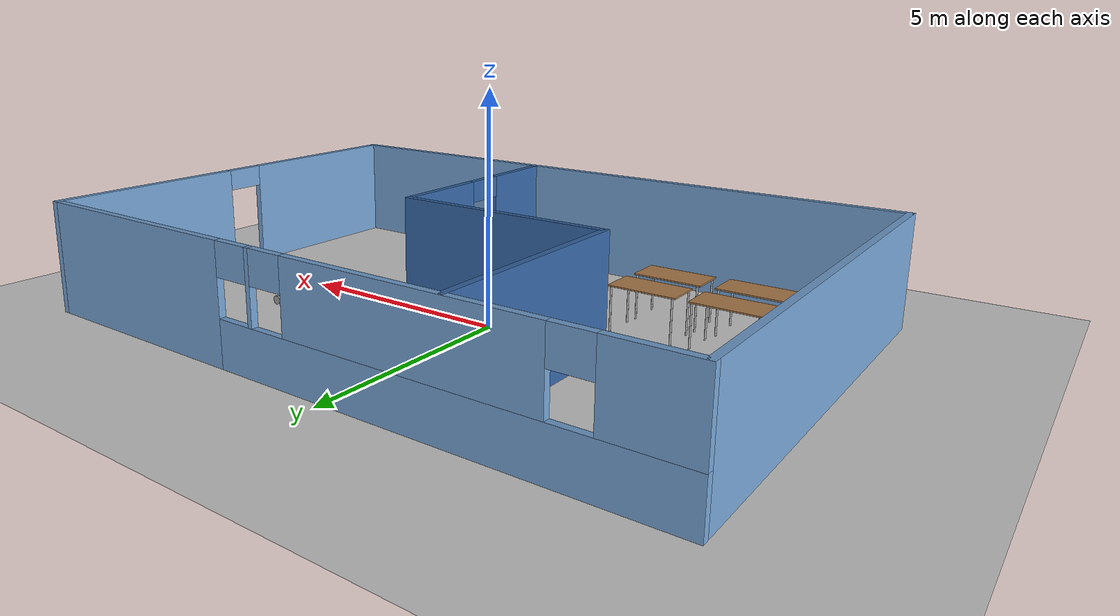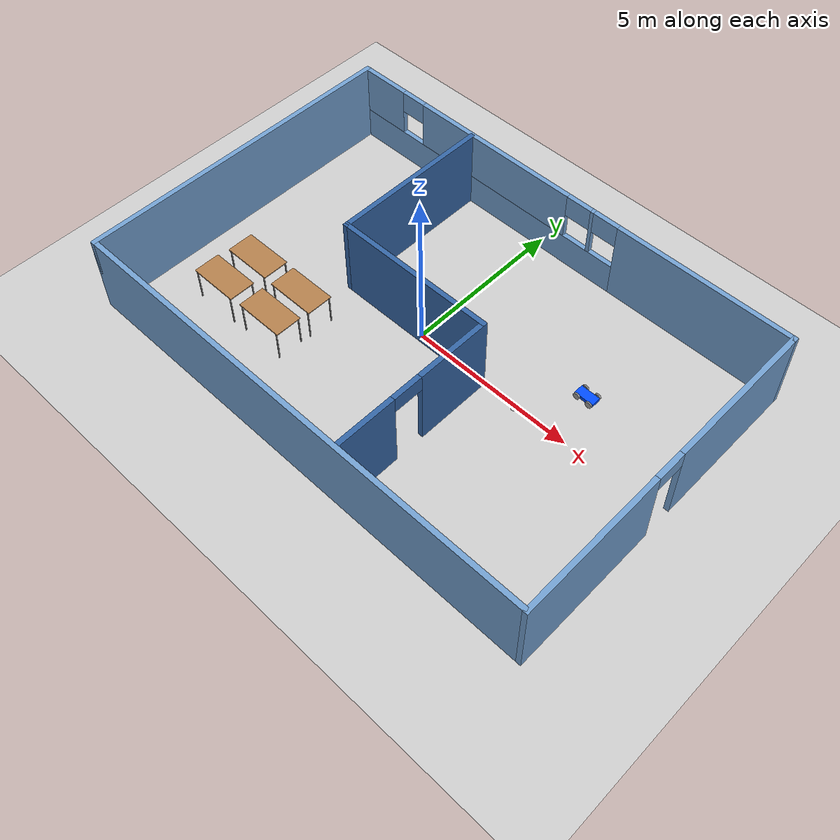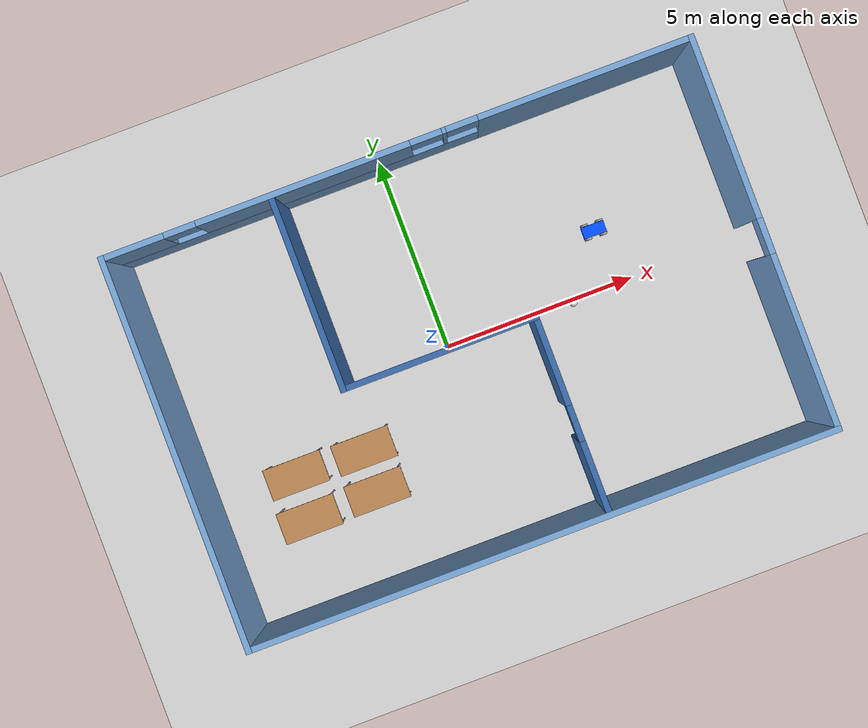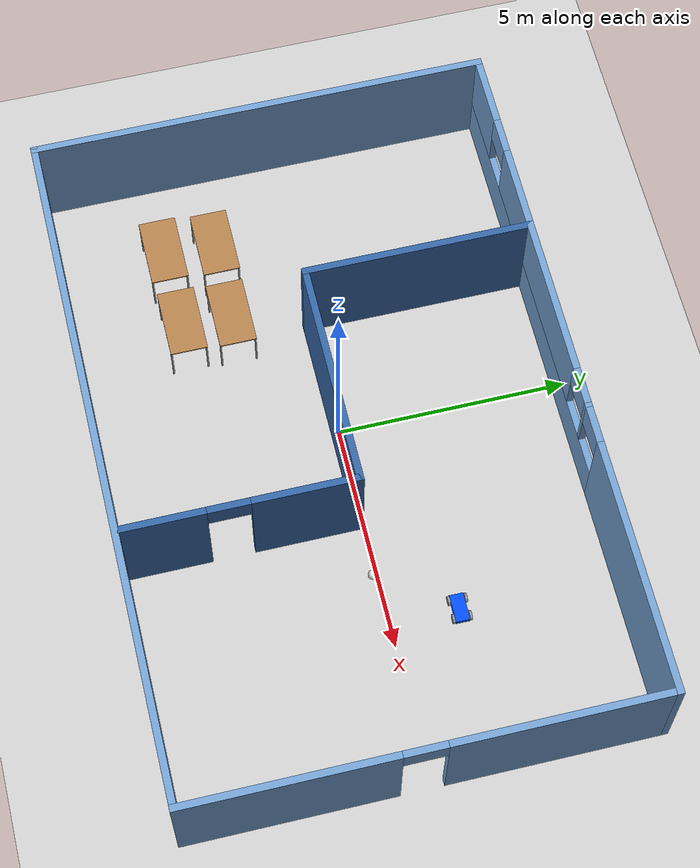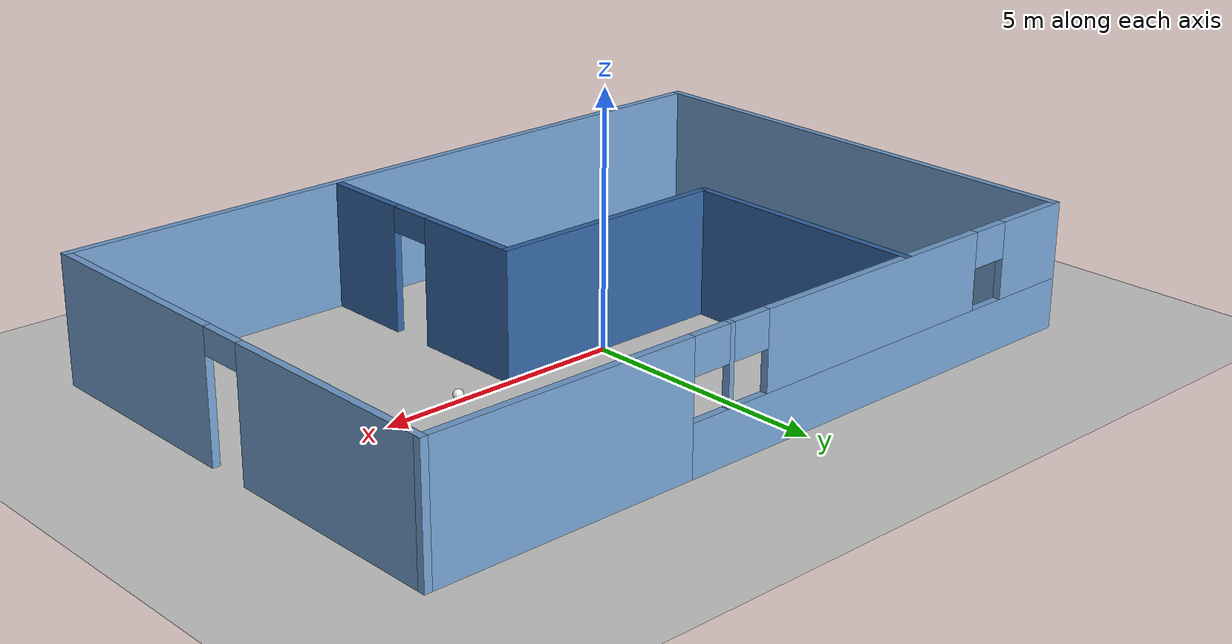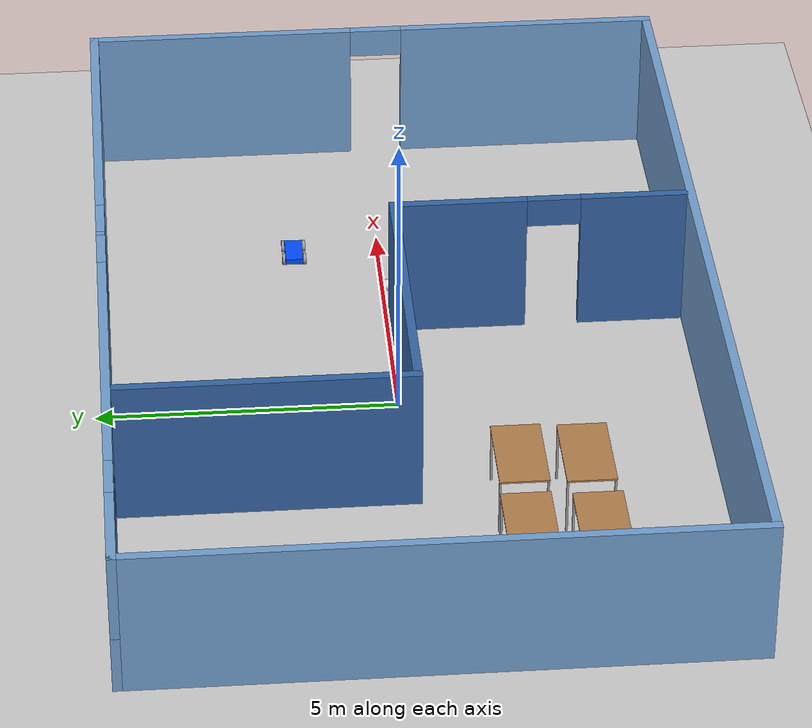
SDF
<sdf version="1.6">
 <world name="default">
  <plugin name="UdacityScript" filename="libUdacityScript.so"/>
  <light name="sun" type="directional">
   <pose>0 0 10 0 -0 0</pose>
   <diffuse>0.8 0.8 0.8 1</diffuse>
   <specular>0.2 0.2 0.2 1</specular>
   <attenuation>
    <range>1000</range>
    <constant>0.9</constant>
    <linear>0.01</linear>
    <quadratic>0.001</quadratic>
   </attenuation>
   <direction>-0.5 0.1 -0.9</direction>
  </light>
  <model name="ground_plane">
   <static>1</static>
   <link name="link">
    <collision name="collision">
     <geometry><plane><normal>0 0 1</normal><size>100 100</size></plane></geometry>
     <surface>
      <contact><collide_bitmask>65535</collide_bitmask></contact>
      <friction><ode><mu>100</mu><mu2>50</mu2></ode></friction>
     </surface>
    </collision>
    <visual name="visual">
     <cast_shadows>0</cast_shadows>
     <geometry><plane><normal>0 0 1</normal><size>100 100</size></plane></geometry>
     <material>
      <script><uri>file://media/materials/scripts/gazebo.material</uri><name>Gazebo/Grey</name></script>
     </material>
    </visual>
   </link>
  </model>
  <gravity>0 0 -9.8</gravity>
  <magnetic_field>6e-06 2.3e-05 -4.2e-05</magnetic_field>
  <atmosphere type="adiabatic"/>
  <physics name="default_physics" default="0" type="ode">
   <max_step_size>0.001</max_step_size>
   <real_time_factor>1</real_time_factor>
   <real_time_update_rate>1000</real_time_update_rate>
  </physics>
  <scene><ambient>0.4 0.4 0.4 1</ambient><background>0.7 0.7 0.7 1</background><shadows>1</shadows></scene>
  <audio><device>default</device></audio>
  <spherical_coordinates>
   <surface_model>EARTH_WGS84</surface_model>
   <latitude_deg>0</latitude_deg>
   <longitude_deg>0</longitude_deg>
   <elevation>0</elevation>
   <heading_deg>0</heading_deg>
  </spherical_coordinates>
  <model name="world">
   <pose>0.54481 -0.143092 0 0 -0 0</pose>
   <link name="Wall_0">
    <collision name="Wall_0_Collision">
     <geometry><box><size>10 0.15 2.5</size></box></geometry>
     <pose>0 0 1.25 0 -0 0</pose>
    </collision>
    <visual name="Wall_0_Visual">
     <pose>0 0 1.25 0 -0 0</pose>
     <geometry><box><size>10 0.15 2.5</size></box></geometry>
     <material>
      <script><uri>file://media/materials/scripts/gazebo.material</uri><name>Gazebo/Grey</name></script>
      <ambient>0.447059 0.623529 0.811765 1</ambient>
     </material>
     <meta><layer>0</layer></meta>
    </visual>
    <pose>-7.425 0 0 0 -0 -1.5708</pose>
   </link>
   <link name="Wall_1">
    <collision name="Wall_1_Collision">
     <geometry><box><size>15 0.15 2.5</size></box></geometry>
     <pose>0 0 1.25 0 -0 0</pose>
    </collision>
    <visual name="Wall_1_Visual">
     <pose>0 0 1.25 0 -0 0</pose>
     <geometry><box><size>15 0.15 2.5</size></box></geometry>
     <material>
      <script><uri>file://media/materials/scripts/gazebo.material</uri><name>Gazebo/Grey</name></script>
      <ambient>0.447059 0.623529 0.811765 1</ambient>
     </material>
     <meta><layer>0</layer></meta>
    </visual>
    <pose>0 -4.925 0 0 -0 0</pose>
   </link>
   <link name="Wall_2">
    <pose>7.425 0 0 0 -0 1.5708</pose>
    <visual name="Wall_2_Visual_0">
     <pose>-2.76095 0 1.25 0 -0 0</pose>
     <geometry><box><size>4.47811 0.15 2.5</size></box></geometry>
     <material>
      <script><uri>file://media/materials/scripts/gazebo.material</uri><name>Gazebo/Grey</name></script>
      <ambient>0.447059 0.623529 0.811765 1</ambient>
     </material>
     <meta><layer>0</layer></meta>
    </visual>
    <collision name="Wall_2_Collision_0">
     <geometry><box><size>4.47811 0.15 2.5</size></box></geometry>
     <pose>-2.76095 0 1.25 0 -0 0</pose>
    </collision>
    <visual name="Wall_2_Visual_1">
     <pose>2.68905 0 1.25 0 -0 0</pose>
     <geometry><box><size>4.6219 0.15 2.5</size></box></geometry>
     <material>
      <script><uri>file://media/materials/scripts/gazebo.material</uri><name>Gazebo/Grey</name></script>
      <ambient>0.447059 0.623529 0.811765 1</ambient>
     </material>
     <meta><layer>0</layer></meta>
    </visual>
    <collision name="Wall_2_Collision_1">
     <geometry><box><size>4.6219 0.15 2.5</size></box></geometry>
     <pose>2.68905 0 1.25 0 -0 0</pose>
    </collision>
    <visual name="Wall_2_Visual_2">
     <pose>-0.071895 0 2.25 0 -0 0</pose>
     <geometry><box><size>0.9 0.15 0.5</size></box></geometry>
     <material>
      <script><uri>file://media/materials/scripts/gazebo.material</uri><name>Gazebo/Grey</name></script>
      <ambient>0.447059 0.623529 0.811765 1</ambient>
     </material>
     <meta><layer>0</layer></meta>
    </visual>
    <collision name="Wall_2_Collision_2">
     <geometry><box><size>0.9 0.15 0.5</size></box></geometry>
     <pose>-0.071895 0 2.25 0 -0 0</pose>
    </collision>
   </link>
   <link name="Wall_3">
    <pose>0 4.925 0 0 -0 3.14159</pose>
    <visual name="Wall_3_Visual_0">
     <pose>-4.77062 0 1.25 0 -0 0</pose>
     <geometry><box><size>5.45876 0.15 2.5</size></box></geometry>
     <material>
      <script><uri>file://media/materials/scripts/gazebo.material</uri><name>Gazebo/Grey</name></script>
      <ambient>0.447059 0.623529 0.811765 1</ambient>
     </material>
     <meta><layer>0</layer></meta>
    </visual>
    <collision name="Wall_3_Collision_0">
     <geometry><box><size>5.45876 0.15 2.5</size></box></geometry>
     <pose>-4.77062 0 1.25 0 -0 0</pose>
    </collision>
    <visual name="Wall_3_Visual_1">
     <pose>2.72938 0 0.5 0 -0 0</pose>
     <geometry><box><size>9.54124 0.15 1</size></box></geometry>
     <material>
      <script><uri>file://media/materials/scripts/gazebo.material</uri><name>Gazebo/Grey</name></script>
      <ambient>0.447059 0.623529 0.811765 1</ambient>
     </material>
     <meta><layer>0</layer></meta>
    </visual>
    <collision name="Wall_3_Collision_1">
     <geometry><box><size>9.54124 0.15 1</size></box></geometry>
     <pose>2.72938 0 0.5 0 -0 0</pose>
    </collision>
    <visual name="Wall_3_Visual_2">
     <pose>-1.18904 0 1.75 0 -0 0</pose>
     <geometry><box><size>0.104407 0.15 1.5</size></box></geometry>
     <material>
      <script><uri>file://media/materials/scripts/gazebo.material</uri><name>Gazebo/Grey</name></script>
      <ambient>0.447059 0.623529 0.811765 1</ambient>
     </material>
     <meta><layer>0</layer></meta>
    </visual>
    <collision name="Wall_3_Collision_2">
     <geometry><box><size>0.104407 0.15 1.5</size></box></geometry>
     <pose>-1.18904 0 1.75 0 -0 0</pose>
    </collision>
    <visual name="Wall_3_Visual_3">
     <pose>2.36197 0 1.75 0 -0 0</pose>
     <geometry><box><size>5.3976 0.15 1.5</size></box></geometry>
     <material>
      <script><uri>file://media/materials/scripts/gazebo.material</uri><name>Gazebo/Grey</name></script>
      <ambient>0.447059 0.623529 0.811765 1</ambient>
     </material>
     <meta><layer>0</layer></meta>
    </visual>
    <collision name="Wall_3_Collision_3">
     <geometry><box><size>5.3976 0.15 1.5</size></box></geometry>
     <pose>2.36197 0 1.75 0 -0 0</pose>
    </collision>
    <visual name="Wall_3_Visual_4">
     <pose>6.68038 0 1.75 0 -0 0</pose>
     <geometry><box><size>1.63923 0.15 1.5</size></box></geometry>
     <material>
      <script><uri>file://media/materials/scripts/gazebo.material</uri><name>Gazebo/Grey</name></script>
      <ambient>0.447059 0.623529 0.811765 1</ambient>
     </material>
     <meta><layer>0</layer></meta>
    </visual>
    <collision name="Wall_3_Collision_4">
     <geometry><box><size>1.63923 0.15 1.5</size></box></geometry>
     <pose>6.68038 0 1.75 0 -0 0</pose>
    </collision>
    <visual name="Wall_3_Visual_5">
     <pose>-1.64124 0 2.15 0 -0 0</pose>
     <geometry><box><size>0.8 0.15 0.7</size></box></geometry>
     <material>
      <script><uri>file://media/materials/scripts/gazebo.material</uri><name>Gazebo/Grey</name></script>
      <ambient>0.447059 0.623529 0.811765 1</ambient>
     </material>
     <meta><layer>0</layer></meta>
    </visual>
    <collision name="Wall_3_Collision_5">
     <geometry><box><size>0.8 0.15 0.7</size></box></geometry>
     <pose>-1.64124 0 2.15 0 -0 0</pose>
    </collision>
    <visual name="Wall_3_Visual_6">
     <pose>-0.736835 0 2.15 0 -0 0</pose>
     <geometry><box><size>0.8 0.15 0.7</size></box></geometry>
     <material>
      <script><uri>file://media/materials/scripts/gazebo.material</uri><name>Gazebo/Grey</name></script>
      <ambient>0.447059 0.623529 0.811765 1</ambient>
     </material>
     <meta><layer>0</layer></meta>
    </visual>
    <collision name="Wall_3_Collision_6">
     <geometry><box><size>0.8 0.15 0.7</size></box></geometry>
     <pose>-0.736835 0 2.15 0 -0 0</pose>
    </collision>
    <visual name="Wall_3_Visual_7">
     <pose>5.46077 0 2.15 0 -0 0</pose>
     <geometry><box><size>0.8 0.15 0.7</size></box></geometry>
     <material>
      <script><uri>file://media/materials/scripts/gazebo.material</uri><name>Gazebo/Grey</name></script>
      <ambient>0.447059 0.623529 0.811765 1</ambient>
     </material>
     <meta><layer>0</layer></meta>
    </visual>
    <collision name="Wall_3_Collision_7">
     <geometry><box><size>0.8 0.15 0.7</size></box></geometry>
     <pose>5.46077 0 2.15 0 -0 0</pose>
    </collision>
   </link>
   <link name="Wall_5">
    <collision name="Wall_5_Collision">
     <geometry><box><size>5 0.15 2.5</size></box></geometry>
     <pose>0 0 1.25 0 -0 0</pose>
    </collision>
    <visual name="Wall_5_Visual">
     <pose>0 0 1.25 0 -0 0</pose>
     <geometry><box><size>5 0.15 2.5</size></box></geometry>
     <material>
      <script><uri>file://media/materials/scripts/gazebo.material</uri><name>Gazebo/Grey</name></script>
      <ambient>0.203922 0.396078 0.643137 1</ambient>
     </material>
     <meta><layer>0</layer></meta>
    </visual>
    <pose>-3.17339 2.47734 0 0 -0 -1.5708</pose>
   </link>
   <link name="Wall_6">
    <collision name="Wall_6_Collision">
     <geometry><box><size>5 0.15 2.5</size></box></geometry>
     <pose>0 0 1.25 0 -0 0</pose>
    </collision>
    <visual name="Wall_6_Visual">
     <pose>0 0 1.25 0 -0 0</pose>
     <geometry><box><size>5 0.15 2.5</size></box></geometry>
     <material>
      <script><uri>file://media/materials/scripts/gazebo.material</uri><name>Gazebo/Grey</name></script>
      <ambient>0.203922 0.396078 0.643137 1</ambient>
     </material>
     <meta><layer>0</layer></meta>
    </visual>
    <pose>-0.748394 0.052343 0 0 -0 0</pose>
   </link>
   <link name="Wall_7">
    <pose>1.67661 -2.37266 0 0 -0 -1.5708</pose>
    <visual name="Wall_7_Visual_0">
     <pose>-1.34857 0 1.25 0 -0 0</pose>
     <geometry><box><size>2.30286 0.15 2.5</size></box></geometry>
     <material>
      <script><uri>file://media/materials/scripts/gazebo.material</uri><name>Gazebo/Grey</name></script>
      <ambient>0.203922 0.396078 0.643137 1</ambient>
     </material>
     <meta><layer>0</layer></meta>
    </visual>
    <collision name="Wall_7_Collision_0">
     <geometry><box><size>2.30286 0.15 2.5</size></box></geometry>
     <pose>-1.34857 0 1.25 0 -0 0</pose>
    </collision>
    <visual name="Wall_7_Visual_1">
     <pose>1.60143 0 1.25 0 -0 0</pose>
     <geometry><box><size>1.79714 0.15 2.5</size></box></geometry>
     <material>
      <script><uri>file://media/materials/scripts/gazebo.material</uri><name>Gazebo/Grey</name></script>
      <ambient>0.203922 0.396078 0.643137 1</ambient>
     </material>
     <meta><layer>0</layer></meta>
    </visual>
    <collision name="Wall_7_Collision_1">
     <geometry><box><size>1.79714 0.15 2.5</size></box></geometry>
     <pose>1.60143 0 1.25 0 -0 0</pose>
    </collision>
    <visual name="Wall_7_Visual_2">
     <pose>0.252856 0 2.25 0 -0 0</pose>
     <geometry><box><size>0.9 0.15 0.5</size></box></geometry>
     <material>
      <script><uri>file://media/materials/scripts/gazebo.material</uri><name>Gazebo/Grey</name></script>
      <ambient>0.203922 0.396078 0.643137 1</ambient>
     </material>
     <meta><layer>0</layer></meta>
    </visual>
    <collision name="Wall_7_Collision_2">
     <geometry><box><size>0.9 0.15 0.5</size></box></geometry>
     <pose>0.252856 0 2.25 0 -0 0</pose>
    </collision>
   </link>
   <static>1</static>
  </model>
  <model name="table">
   <static>1</static>
   <link name="link">
    <collision name="surface">
     <pose>0 0 1 0 -0 0</pose>
     <geometry><box><size>1.5 0.8 0.03</size></box></geometry>
     <surface><friction><ode><mu>0.6</mu><mu2>0.6</mu2></ode></friction></surface>
    </collision>
    <visual name="visual1">
     <pose>0 0 1 0 -0 0</pose>
     <geometry><box><size>1.5 0.8 0.03</size></box></geometry>
     <material>
      <script><uri>file://media/materials/scripts/gazebo.material</uri><name>Gazebo/Wood</name></script>
     </material>
    </visual>
    <collision name="front_left_leg">
     <pose>0.68 0.38 0.5 0 -0 0</pose>
     <geometry><cylinder><radius>0.02</radius><length>1</length></cylinder></geometry>
    </collision>
    <visual name="front_left_leg">
     <pose>0.68 0.38 0.5 0 -0 0</pose>
     <geometry><cylinder><radius>0.02</radius><length>1</length></cylinder></geometry>
     <material>
      <script><uri>file://media/materials/scripts/gazebo.material</uri><name>Gazebo/Grey</name></script>
     </material>
    </visual>
    <collision name="front_right_leg">
     <pose>0.68 -0.38 0.5 0 -0 0</pose>
     <geometry><cylinder><radius>0.02</radius><length>1</length></cylinder></geometry>
    </collision>
    <visual name="front_right_leg">
     <pose>0.68 -0.38 0.5 0 -0 0</pose>
     <geometry><cylinder><radius>0.02</radius><length>1</length></cylinder></geometry>
     <material>
      <script><uri>file://media/materials/scripts/gazebo.material</uri><name>Gazebo/Grey</name></script>
     </material>
    </visual>
    <collision name="back_right_leg">
     <pose>-0.68 -0.38 0.5 0 -0 0</pose>
     <geometry><cylinder><radius>0.02</radius><length>1</length></cylinder></geometry>
    </collision>
    <visual name="back_right_leg">
     <pose>-0.68 -0.38 0.5 0 -0 0</pose>
     <geometry><cylinder><radius>0.02</radius><length>1</length></cylinder></geometry>
     <material>
      <script><uri>file://media/materials/scripts/gazebo.material</uri><name>Gazebo/Grey</name></script>
     </material>
    </visual>
    <collision name="back_left_leg">
     <pose>-0.68 0.38 0.5 0 -0 0</pose>
     <geometry><cylinder><radius>0.02</radius><length>1</length></cylinder></geometry>
    </collision>
    <visual name="back_left_leg">
     <pose>-0.68 0.38 0.5 0 -0 0</pose>
     <geometry><cylinder><radius>0.02</radius><length>1</length></cylinder></geometry>
     <material>
      <script><uri>file://media/materials/scripts/gazebo.material</uri><name>Gazebo/Grey</name></script>
     </material>
    </visual>
   </link>
   <pose>-4.61756 -1.6709 0 0 -0 0</pose>
  </model>
  <model name="table_0">
   <static>1</static>
   <link name="link">
    <collision name="surface">
     <pose>0 0 1 0 -0 0</pose>
     <geometry><box><size>1.5 0.8 0.03</size></box></geometry>
     <surface><friction><ode><mu>0.6</mu><mu2>0.6</mu2></ode></friction></surface>
    </collision>
    <visual name="visual1">
     <pose>0 0 1 0 -0 0</pose>
     <geometry><box><size>1.5 0.8 0.03</size></box></geometry>
     <material>
      <script><uri>file://media/materials/scripts/gazebo.material</uri><name>Gazebo/Wood</name></script>
     </material>
    </visual>
    <collision name="front_left_leg">
     <pose>0.68 0.38 0.5 0 -0 0</pose>
     <geometry><cylinder><radius>0.02</radius><length>1</length></cylinder></geometry>
    </collision>
    <visual name="front_left_leg">
     <pose>0.68 0.38 0.5 0 -0 0</pose>
     <geometry><cylinder><radius>0.02</radius><length>1</length></cylinder></geometry>
     <material>
      <script><uri>file://media/materials/scripts/gazebo.material</uri><name>Gazebo/Grey</name></script>
     </material>
    </visual>
    <collision name="front_right_leg">
     <pose>0.68 -0.38 0.5 0 -0 0</pose>
     <geometry><cylinder><radius>0.02</radius><length>1</length></cylinder></geometry>
    </collision>
    <visual name="front_right_leg">
     <pose>0.68 -0.38 0.5 0 -0 0</pose>
     <geometry><cylinder><radius>0.02</radius><length>1</length></cylinder></geometry>
     <material>
      <script><uri>file://media/materials/scripts/gazebo.material</uri><name>Gazebo/Grey</name></script>
     </material>
    </visual>
    <collision name="back_right_leg">
     <pose>-0.68 -0.38 0.5 0 -0 0</pose>
     <geometry><cylinder><radius>0.02</radius><length>1</length></cylinder></geometry>
    </collision>
    <visual name="back_right_leg">
     <pose>-0.68 -0.38 0.5 0 -0 0</pose>
     <geometry><cylinder><radius>0.02</radius><length>1</length></cylinder></geometry>
     <material>
      <script><uri>file://media/materials/scripts/gazebo.material</uri><name>Gazebo/Grey</name></script>
     </material>
    </visual>
    <collision name="back_left_leg">
     <pose>-0.68 0.38 0.5 0 -0 0</pose>
     <geometry><cylinder><radius>0.02</radius><length>1</length></cylinder></geometry>
    </collision>
    <visual name="back_left_leg">
     <pose>-0.68 0.38 0.5 0 -0 0</pose>
     <geometry><cylinder><radius>0.02</radius><length>1</length></cylinder></geometry>
     <material>
      <script><uri>file://media/materials/scripts/gazebo.material</uri><name>Gazebo/Grey</name></script>
     </material>
    </visual>
   </link>
   <pose>-2.83537 -1.69331 0 0 -0 0</pose>
  </model>
  <model name="table_1">
   <static>1</static>
   <link name="link">
    <collision name="surface">
     <pose>0 0 1 0 -0 0</pose>
     <geometry><box><size>1.5 0.8 0.03</size></box></geometry>
     <surface><friction><ode><mu>0.6</mu><mu2>0.6</mu2></ode></friction></surface>
    </collision>
    <visual name="visual1">
     <pose>0 0 1 0 -0 0</pose>
     <geometry><box><size>1.5 0.8 0.03</size></box></geometry>
     <material>
      <script><uri>file://media/materials/scripts/gazebo.material</uri><name>Gazebo/Wood</name></script>
     </material>
    </visual>
    <collision name="front_left_leg">
     <pose>0.68 0.38 0.5 0 -0 0</pose>
     <geometry><cylinder><radius>0.02</radius><length>1</length></cylinder></geometry>
    </collision>
    <visual name="front_left_leg">
     <pose>0.68 0.38 0.5 0 -0 0</pose>
     <geometry><cylinder><radius>0.02</radius><length>1</length></cylinder></geometry>
     <material>
      <script><uri>file://media/materials/scripts/gazebo.material</uri><name>Gazebo/Grey</name></script>
     </material>
    </visual>
    <collision name="front_right_leg">
     <pose>0.68 -0.38 0.5 0 -0 0</pose>
     <geometry><cylinder><radius>0.02</radius><length>1</length></cylinder></geometry>
    </collision>
    <visual name="front_right_leg">
     <pose>0.68 -0.38 0.5 0 -0 0</pose>
     <geometry><cylinder><radius>0.02</radius><length>1</length></cylinder></geometry>
     <material>
      <script><uri>file://media/materials/scripts/gazebo.material</uri><name>Gazebo/Grey</name></script>
     </material>
    </visual>
    <collision name="back_right_leg">
     <pose>-0.68 -0.38 0.5 0 -0 0</pose>
     <geometry><cylinder><radius>0.02</radius><length>1</length></cylinder></geometry>
    </collision>
    <visual name="back_right_leg">
     <pose>-0.68 -0.38 0.5 0 -0 0</pose>
     <geometry><cylinder><radius>0.02</radius><length>1</length></cylinder></geometry>
     <material>
      <script><uri>file://media/materials/scripts/gazebo.material</uri><name>Gazebo/Grey</name></script>
     </material>
    </visual>
    <collision name="back_left_leg">
     <pose>-0.68 0.38 0.5 0 -0 0</pose>
     <geometry><cylinder><radius>0.02</radius><length>1</length></cylinder></geometry>
    </collision>
    <visual name="back_left_leg">
     <pose>-0.68 0.38 0.5 0 -0 0</pose>
     <geometry><cylinder><radius>0.02</radius><length>1</length></cylinder></geometry>
     <material>
      <script><uri>file://media/materials/scripts/gazebo.material</uri><name>Gazebo/Grey</name></script>
     </material>
    </visual>
   </link>
   <pose>-4.68605 -2.796 0 0 -0 0</pose>
  </model>
  <model name="table_2">
   <static>1</static>
   <link name="link">
    <collision name="surface">
     <pose>0 0 1 0 -0 0</pose>
     <geometry><box><size>1.5 0.8 0.03</size></box></geometry>
     <surface><friction><ode><mu>0.6</mu><mu2>0.6</mu2></ode></friction></surface>
    </collision>
    <visual name="visual1">
     <pose>0 0 1 0 -0 0</pose>
     <geometry><box><size>1.5 0.8 0.03</size></box></geometry>
     <material>
      <script><uri>file://media/materials/scripts/gazebo.material</uri><name>Gazebo/Wood</name></script>
     </material>
    </visual>
    <collision name="front_left_leg">
     <pose>0.68 0.38 0.5 0 -0 0</pose>
     <geometry><cylinder><radius>0.02</radius><length>1</length></cylinder></geometry>
    </collision>
    <visual name="front_left_leg">
     <pose>0.68 0.38 0.5 0 -0 0</pose>
     <geometry><cylinder><radius>0.02</radius><length>1</length></cylinder></geometry>
     <material>
      <script><uri>file://media/materials/scripts/gazebo.material</uri><name>Gazebo/Grey</name></script>
     </material>
    </visual>
    <collision name="front_right_leg">
     <pose>0.68 -0.38 0.5 0 -0 0</pose>
     <geometry><cylinder><radius>0.02</radius><length>1</length></cylinder></geometry>
    </collision>
    <visual name="front_right_leg">
     <pose>0.68 -0.38 0.5 0 -0 0</pose>
     <geometry><cylinder><radius>0.02</radius><length>1</length></cylinder></geometry>
     <material>
      <script><uri>file://media/materials/scripts/gazebo.material</uri><name>Gazebo/Grey</name></script>
     </material>
    </visual>
    <collision name="back_right_leg">
     <pose>-0.68 -0.38 0.5 0 -0 0</pose>
     <geometry><cylinder><radius>0.02</radius><length>1</length></cylinder></geometry>
    </collision>
    <visual name="back_right_leg">
     <pose>-0.68 -0.38 0.5 0 -0 0</pose>
     <geometry><cylinder><radius>0.02</radius><length>1</length></cylinder></geometry>
     <material>
      <script><uri>file://media/materials/scripts/gazebo.material</uri><name>Gazebo/Grey</name></script>
     </material>
    </visual>
    <collision name="back_left_leg">
     <pose>-0.68 0.38 0.5 0 -0 0</pose>
     <geometry><cylinder><radius>0.02</radius><length>1</length></cylinder></geometry>
    </collision>
    <visual name="back_left_leg">
     <pose>-0.68 0.38 0.5 0 -0 0</pose>
     <geometry><cylinder><radius>0.02</radius><length>1</length></cylinder></geometry>
     <material>
      <script><uri>file://media/materials/scripts/gazebo.material</uri><name>Gazebo/Grey</name></script>
     </material>
    </visual>
   </link>
   <pose>-2.88405 -2.75065 0 0 -0 0</pose>
  </model>
  <model name="robot">
   <static>0</static>
   <link name="chassis">
    <inertial>
     <mass>1</mass>
     <inertia>
      <ixx>0.166667</ixx>
      <ixy>0</ixy>
      <ixz>0</ixz>
      <iyy>0.166667</iyy>
      <iyz>0</iyz>
      <izz>0.166667</izz>
     </inertia>
    </inertial>
    <visual name="visual">
     <geometry><box><size>0.6 0.3 0.1</size></box></geometry>
     <material>
      <lighting>1</lighting>
      <script><uri>file://media/materials/scripts/gazebo.material</uri><name>Gazebo/Grey</name></script>
      <shader type="vertex"><normal_map>__default__</normal_map></shader>
      <ambient>0.3 0.3 0.3 1</ambient>
      <diffuse>0 0.298 1 1</diffuse>
      <specular>0.01 0.01 0.01 1</specular>
      <emissive>0 0 0 1</emissive>
     </material>
    </visual>
    <collision name="collision">
     <geometry><box><size>0.6 0.3 0.1</size></box></geometry>
     <surface>
      <friction>
       <ode><mu>1</mu><mu2>1</mu2><fdir1>0 0 0</fdir1><slip1>0</slip1><slip2>0</slip2></ode>
       <torsional>
        <coefficient>1</coefficient>
        <patch_radius>0</patch_radius>
        <surface_radius>0</surface_radius>
        <use_patch_radius>1</use_patch_radius>
        <ode><slip>0</slip></ode>
       </torsional>
      </friction>
      <bounce><restitution_coefficient>0</restitution_coefficient><threshold>1e+06</threshold></bounce>
      <contact>
       <collide_without_contact>0</collide_without_contact>
       <collide_without_contact_bitmask>1</collide_without_contact_bitmask>
       <collide_bitmask>1</collide_bitmask>
       <ode>
        <soft_cfm>0</soft_cfm>
        <soft_erp>0.2</soft_erp>
        <kp>1e+13</kp>
        <kd>1</kd>
        <max_vel>0.01</max_vel>
        <min_depth>0</min_depth>
       </ode>
       <bullet>
        <split_impulse>1</split_impulse>
        <split_impulse_penetration_threshold>-0.01</split_impulse_penetration_threshold>
        <soft_cfm>0</soft_cfm>
        <soft_erp>0.2</soft_erp>
        <kp>1e+13</kp>
        <kd>1</kd>
       </bullet>
      </contact>
     </surface>
    </collision>
   </link>
   <link name="front_left">
    <inertial>
     <mass>1</mass>
     <inertia><ixx>0.145833</ixx><ixy>0</ixy><ixz>0</ixz><iyy>0.145833</iyy><iyz>0</iyz><izz>0.125</izz></inertia>
    </inertial>
    <pose>-0.2 -0.18016 0 1.57 -0 0</pose>
    <visual name="visual">
     <geometry><cylinder><radius>0.1</radius><length>0.05</length></cylinder></geometry>
     <material>
      <lighting>1</lighting>
      <script><uri>file://media/materials/scripts/gazebo.material</uri><name>Gazebo/Grey</name></script>
      <shader type="vertex"><normal_map>__default__</normal_map></shader>
      <ambient>0.3 0.3 0.3 1</ambient>
      <diffuse>0 0 0 1</diffuse>
      <specular>0.01 0.01 0.01 1</specular>
      <emissive>0 0 0 1</emissive>
     </material>
    </visual>
    <collision name="collision">
     <geometry><cylinder><radius>0.1</radius><length>0.05</length></cylinder></geometry>
     <surface>
      <friction>
       <ode><mu>1</mu><mu2>1</mu2><fdir1>0 0 0</fdir1><slip1>0</slip1><slip2>0</slip2></ode>
       <torsional>
        <coefficient>1</coefficient>
        <patch_radius>0</patch_radius>
        <surface_radius>0</surface_radius>
        <use_patch_radius>1</use_patch_radius>
        <ode><slip>0</slip></ode>
       </torsional>
      </friction>
      <bounce><restitution_coefficient>0</restitution_coefficient><threshold>1e+06</threshold></bounce>
      <contact>
       <collide_without_contact>0</collide_without_contact>
       <collide_without_contact_bitmask>1</collide_without_contact_bitmask>
       <collide_bitmask>1</collide_bitmask>
       <ode>
        <soft_cfm>0</soft_cfm>
        <soft_erp>0.2</soft_erp>
        <kp>1e+13</kp>
        <kd>1</kd>
        <max_vel>0.01</max_vel>
        <min_depth>0</min_depth>
       </ode>
       <bullet>
        <split_impulse>1</split_impulse>
        <split_impulse_penetration_threshold>-0.01</split_impulse_penetration_threshold>
        <soft_cfm>0</soft_cfm>
        <soft_erp>0.2</soft_erp>
        <kp>1e+13</kp>
        <kd>1</kd>
       </bullet>
      </contact>
     </surface>
    </collision>
   </link>
   <link name="front_right">
    <inertial>
     <mass>1</mass>
     <inertia><ixx>0.145833</ixx><ixy>0</ixy><ixz>0</ixz><iyy>0.145833</iyy><iyz>0</iyz><izz>0.125</izz></inertia>
    </inertial>
    <pose>-0.2 0.18016 0 1.57 -0 0</pose>
    <visual name="visual">
     <geometry><cylinder><radius>0.1</radius><length>0.05</length></cylinder></geometry>
     <material>
      <lighting>1</lighting>
      <script><uri>file://media/materials/scripts/gazebo.material</uri><name>Gazebo/Grey</name></script>
      <shader type="vertex"><normal_map>__default__</normal_map></shader>
      <ambient>0.3 0.3 0.3 1</ambient>
      <diffuse>0 0 0 1</diffuse>
      <specular>0.01 0.01 0.01 1</specular>
      <emissive>0 0 0 1</emissive>
     </material>
    </visual>
    <collision name="collision">
     <geometry><cylinder><radius>0.1</radius><length>0.05</length></cylinder></geometry>
     <surface>
      <friction>
       <ode><mu>1</mu><mu2>1</mu2><fdir1>0 0 0</fdir1><slip1>0</slip1><slip2>0</slip2></ode>
       <torsional>
        <coefficient>1</coefficient>
        <patch_radius>0</patch_radius>
        <surface_radius>0</surface_radius>
        <use_patch_radius>1</use_patch_radius>
        <ode><slip>0</slip></ode>
       </torsional>
      </friction>
      <bounce><restitution_coefficient>0</restitution_coefficient><threshold>1e+06</threshold></bounce>
      <contact>
       <collide_without_contact>0</collide_without_contact>
       <collide_without_contact_bitmask>1</collide_without_contact_bitmask>
       <collide_bitmask>1</collide_bitmask>
       <ode>
        <soft_cfm>0</soft_cfm>
        <soft_erp>0.2</soft_erp>
        <kp>1e+13</kp>
        <kd>1</kd>
        <max_vel>0.01</max_vel>
        <min_depth>0</min_depth>
       </ode>
       <bullet>
        <split_impulse>1</split_impulse>
        <split_impulse_penetration_threshold>-0.01</split_impulse_penetration_threshold>
        <soft_cfm>0</soft_cfm>
        <soft_erp>0.2</soft_erp>
        <kp>1e+13</kp>
        <kd>1</kd>
       </bullet>
      </contact>
     </surface>
    </collision>
   </link>
   <link name="rear_left">
    <inertial>
     <mass>1</mass>
     <inertia><ixx>0.145833</ixx><ixy>0</ixy><ixz>0</ixz><iyy>0.145833</iyy><iyz>0</iyz><izz>0.125</izz></inertia>
    </inertial>
    <pose>0.2 -0.18016 0 1.57 -0 0</pose>
    <visual name="visual">
     <geometry><cylinder><radius>0.1</radius><length>0.05</length></cylinder></geometry>
     <material>
      <lighting>1</lighting>
      <script><uri>file://media/materials/scripts/gazebo.material</uri><name>Gazebo/Grey</name></script>
      <shader type="vertex"><normal_map>__default__</normal_map></shader>
      <ambient>0.3 0.3 0.3 1</ambient>
      <diffuse>0 0 0 1</diffuse>
      <specular>0.01 0.01 0.01 1</specular>
      <emissive>0 0 0 1</emissive>
     </material>
    </visual>
    <collision name="collision">
     <geometry><cylinder><radius>0.1</radius><length>0.05</length></cylinder></geometry>
     <surface>
      <friction>
       <ode><mu>1</mu><mu2>1</mu2><fdir1>0 0 0</fdir1><slip1>0</slip1><slip2>0</slip2></ode>
       <torsional>
        <coefficient>1</coefficient>
        <patch_radius>0</patch_radius>
        <surface_radius>0</surface_radius>
        <use_patch_radius>1</use_patch_radius>
        <ode><slip>0</slip></ode>
       </torsional>
      </friction>
      <bounce><restitution_coefficient>0</restitution_coefficient><threshold>1e+06</threshold></bounce>
      <contact>
       <collide_without_contact>0</collide_without_contact>
       <collide_without_contact_bitmask>1</collide_without_contact_bitmask>
       <collide_bitmask>1</collide_bitmask>
       <ode>
        <soft_cfm>0</soft_cfm>
        <soft_erp>0.2</soft_erp>
        <kp>1e+13</kp>
        <kd>1</kd>
        <max_vel>0.01</max_vel>
        <min_depth>0</min_depth>
       </ode>
       <bullet>
        <split_impulse>1</split_impulse>
        <split_impulse_penetration_threshold>-0.01</split_impulse_penetration_threshold>
        <soft_cfm>0</soft_cfm>
        <soft_erp>0.2</soft_erp>
        <kp>1e+13</kp>
        <kd>1</kd>
       </bullet>
      </contact>
     </surface>
    </collision>
   </link>
   <link name="rear_right">
    <inertial>
     <mass>1</mass>
     <inertia><ixx>0.145833</ixx><ixy>0</ixy><ixz>0</ixz><iyy>0.145833</iyy><iyz>0</iyz><izz>0.125</izz></inertia>
    </inertial>
    <pose>0.2 0.18016 0 1.57 -0 0</pose>
    <visual name="visual">
     <geometry><cylinder><radius>0.1</radius><length>0.05</length></cylinder></geometry>
     <material>
      <lighting>1</lighting>
      <script><uri>file://media/materials/scripts/gazebo.material</uri><name>Gazebo/Grey</name></script>
      <shader type="vertex"><normal_map>__default__</normal_map></shader>
      <ambient>0.3 0.3 0.3 1</ambient>
      <diffuse>0 0 0 1</diffuse>
      <specular>0.01 0.01 0.01 1</specular>
      <emissive>0 0 0 1</emissive>
     </material>
    </visual>
    <collision name="collision">
     <geometry><cylinder><radius>0.1</radius><length>0.05</length></cylinder></geometry>
     <surface>
      <friction>
       <ode><mu>1</mu><mu2>1</mu2><fdir1>0 0 0</fdir1><slip1>0</slip1><slip2>0</slip2></ode>
       <torsional>
        <coefficient>1</coefficient>
        <patch_radius>0</patch_radius>
        <surface_radius>0</surface_radius>
        <use_patch_radius>1</use_patch_radius>
        <ode><slip>0</slip></ode>
       </torsional>
      </friction>
      <bounce><restitution_coefficient>0</restitution_coefficient><threshold>1e+06</threshold></bounce>
      <contact>
       <collide_without_contact>0</collide_without_contact>
       <collide_without_contact_bitmask>1</collide_without_contact_bitmask>
       <collide_bitmask>1</collide_bitmask>
       <ode>
        <soft_cfm>0</soft_cfm>
        <soft_erp>0.2</soft_erp>
        <kp>1e+13</kp>
        <kd>1</kd>
        <max_vel>0.01</max_vel>
        <min_depth>0</min_depth>
       </ode>
       <bullet>
        <split_impulse>1</split_impulse>
        <split_impulse_penetration_threshold>-0.01</split_impulse_penetration_threshold>
        <soft_cfm>0</soft_cfm>
        <soft_erp>0.2</soft_erp>
        <kp>1e+13</kp>
        <kd>1</kd>
       </bullet>
      </contact>
     </surface>
    </collision>
   </link>
   <joint name="front_left_joint" type="revolute">
    <parent>chassis</parent>
    <child>front_left</child>
    <axis>
     <xyz>0 0 1</xyz>
     <use_parent_model_frame>0</use_parent_model_frame>
     <limit>
      <lower>-1.79769e+308</lower>
      <upper>1.79769e+308</upper>
      <effort>-1</effort>
      <velocity>-1</velocity>
     </limit>
     <dynamics>
      <spring_reference>0</spring_reference>
      <spring_stiffness>0</spring_stiffness>
      <damping>0</damping>
      <friction>0</friction>
     </dynamics>
    </axis>
    <physics>
     <ode><limit><cfm>0</cfm><erp>0.2</erp></limit><suspension><cfm>0</cfm><erp>0.2</erp></suspension></ode>
    </physics>
   </joint>
   <joint name="front_right_joint" type="revolute">
    <parent>chassis</parent>
    <child>front_right</child>
    <axis>
     <xyz>0 0 1</xyz>
     <use_parent_model_frame>0</use_parent_model_frame>
     <limit>
      <lower>-1.79769e+308</lower>
      <upper>1.79769e+308</upper>
      <effort>-1</effort>
      <velocity>-1</velocity>
     </limit>
     <dynamics>
      <spring_reference>0</spring_reference>
      <spring_stiffness>0</spring_stiffness>
      <damping>0</damping>
     </dynamics>
    </axis>
    <physics>
     <ode><limit><cfm>0</cfm><erp>0.2</erp></limit><suspension><cfm>0</cfm><erp>0.2</erp></suspension></ode>
    </physics>
   </joint>
   <joint name="rear_left_joint" type="revolute">
    <parent>chassis</parent>
    <child>rear_left</child>
    <axis>
     <xyz>0 0 1</xyz>
     <use_parent_model_frame>0</use_parent_model_frame>
     <limit>
      <lower>-1.79769e+308</lower>
      <upper>1.79769e+308</upper>
      <effort>-1</effort>
      <velocity>-1</velocity>
     </limit>
     <dynamics>
      <spring_reference>0</spring_reference>
      <spring_stiffness>0</spring_stiffness>
      <damping>0</damping>
     </dynamics>
    </axis>
    <physics>
     <ode><limit><cfm>0</cfm><erp>0.2</erp></limit><suspension><cfm>0</cfm><erp>0.2</erp></suspension></ode>
    </physics>
   </joint>
   <joint name="rear_right_joint" type="revolute">
    <parent>chassis</parent>
    <child>rear_right</child>
    <axis>
     <xyz>0 0 1</xyz>
     <use_parent_model_frame>0</use_parent_model_frame>
     <limit>
      <lower>-1.79769e+308</lower>
      <upper>1.79769e+308</upper>
      <effort>-1</effort>
      <velocity>-1</velocity>
     </limit>
     <dynamics>
      <spring_reference>0</spring_reference>
      <spring_stiffness>0</spring_stiffness>
      <damping>0</damping>
     </dynamics>
    </axis>
    <physics>
     <ode><limit><cfm>0</cfm><erp>0.2</erp></limit><suspension><cfm>0</cfm><erp>0.2</erp></suspension></ode>
    </physics>
   </joint>
   <static>0</static>
   <pose>4.5165 1.47161 0.10002 0 -0 -0.011149</pose>
  </model>
  <model name="my_ball">
   <link name="link_0">
    <inertial>
     <mass>1</mass>
     <inertia><ixx>0.1</ixx><ixy>0</ixy><ixz>0</ixz><iyy>0.1</iyy><iyz>0</iyz><izz>0.1</izz></inertia>
    </inertial>
    <visual name="visual">
     <geometry><sphere><radius>0.1</radius></sphere></geometry>
     <material>
      <lighting>1</lighting>
      <script><uri>file://media/materials/scripts/gazebo.material</uri><name>Gazebo/White</name></script>
      <shader type="vertex"><normal_map>__default__</normal_map></shader>
      <ambient>1 1 1 1</ambient>
      <diffuse>1 1 1 1</diffuse>
      <specular>1 1 1 1</specular>
      <emissive>1 1 1 1</emissive>
     </material>
    </visual>
    <collision name="collision">
     <geometry><sphere><radius>0.1</radius></sphere></geometry>
     <surface>
      <friction>
       <ode><mu>1</mu><mu2>1</mu2><fdir1>0 0 0</fdir1><slip1>0</slip1><slip2>0</slip2></ode>
       <torsional>
        <coefficient>1</coefficient>
        <patch_radius>0</patch_radius>
        <surface_radius>0</surface_radius>
        <use_patch_radius>1</use_patch_radius>
        <ode><slip>0</slip></ode>
       </torsional>
      </friction>
      <bounce><restitution_coefficient>0</restitution_coefficient><threshold>1e+06</threshold></bounce>
      <contact>
       <collide_without_contact>0</collide_without_contact>
       <collide_without_contact_bitmask>1</collide_without_contact_bitmask>
       <collide_bitmask>1</collide_bitmask>
       <ode>
        <soft_cfm>0</soft_cfm>
        <soft_erp>0.2</soft_erp>
        <kp>1e+13</kp>
        <kd>1</kd>
        <max_vel>0.01</max_vel>
        <min_depth>0</min_depth>
       </ode>
       <bullet>
        <split_impulse>1</split_impulse>
        <split_impulse_penetration_threshold>-0.01</split_impulse_penetration_threshold>
        <soft_cfm>0</soft_cfm>
        <soft_erp>0.2</soft_erp>
        <kp>1e+13</kp>
        <kd>1</kd>
       </bullet>
      </contact>
     </surface>
    </collision>
   </link>
   <static>0</static>
   <pose>3.38414 -0.086238 0.1 0 -0 0</pose>
  </model>
 </world>
</sdf>
